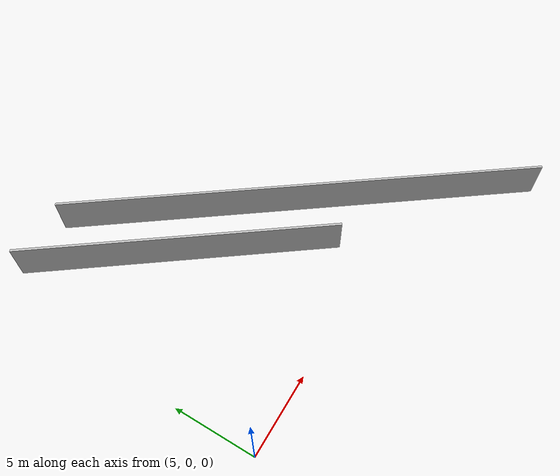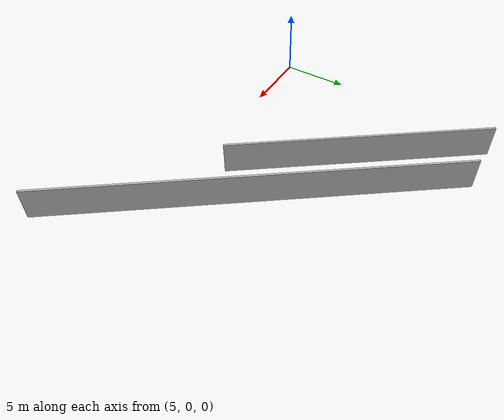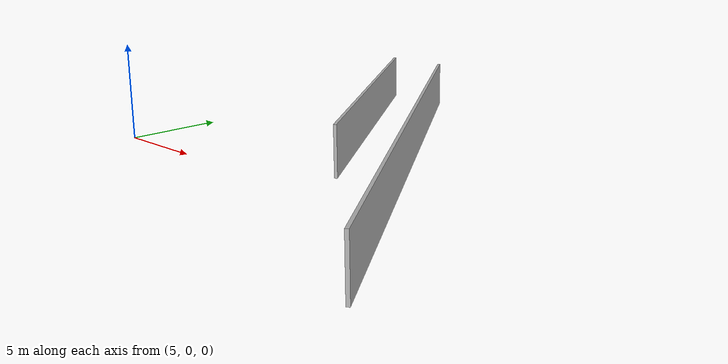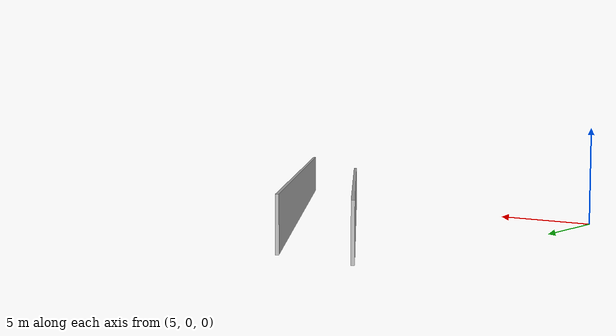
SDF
<?xml version="1.0" ?>
<sdf version="1.6">
  <model name="sps_4730">
    <pose frame="">0 0 0 0 -0 0</pose>
    <static>1</static>
    <self_collide>0</self_collide>
    <allow_auto_disable>0</allow_auto_disable>
    <link name="Wall82">
      <kinematic>0</kinematic>
      <gravity>1</gravity>
      <self_collide>0</self_collide>
      <collision name="collision">
        <geometry>
          <box>
            <size>30.2555 0.15 2.5</size>
          </box>
        </geometry>
        <pose frame="">0 0 0 0 -0 0</pose>
      </collision>
      <visual name="visual">
        <geometry>
          <box>
            <size>30.2555 0.15 2.5</size>
          </box>
        </geometry>
        <pose frame="">0 0 0 0 -0 0</pose>
        <cast_shadows>1</cast_shadows>
        <transparency>0.0</transparency>
      </visual>
      <pose frame="">19.8325 5.67018 1.25 0 -0 2.20088</pose>
    </link>
    <link name="Wall162">
      <kinematic>0</kinematic>
      <gravity>1</gravity>
      <self_collide>0</self_collide>
      <collision name="collision">
        <geometry>
          <box>
            <size>19.3454 0.15 2.5</size>
          </box>
        </geometry>
        <pose frame="">0 0 0 0 -0 0</pose>
      </collision>
      <visual name="visual">
        <geometry>
          <box>
            <size>19.3454 0.15 2.5</size>
          </box>
        </geometry>
        <pose frame="">0 0 0 0 -0 0</pose>
        <cast_shadows>1</cast_shadows>
        <transparency>0.0</transparency>
      </visual>
      <pose frame="">12.7818 10.0778 1.25 0 0 -0.940712</pose>
    </link>
  </model>
</sdf>
